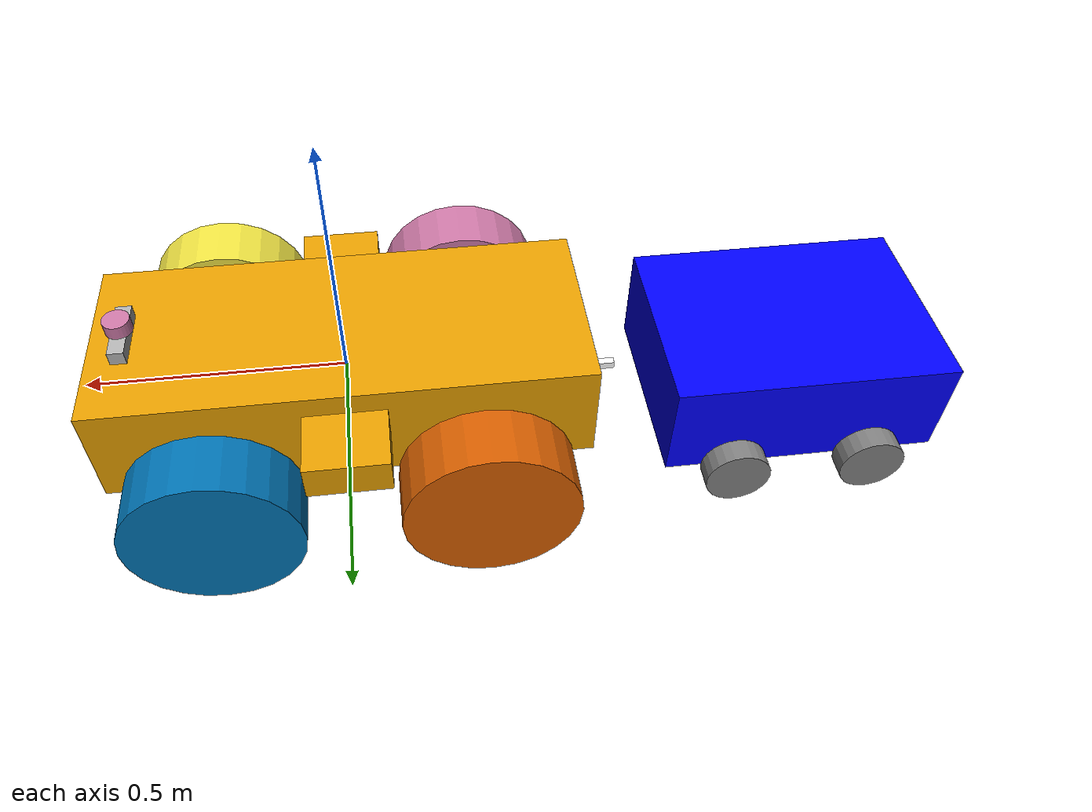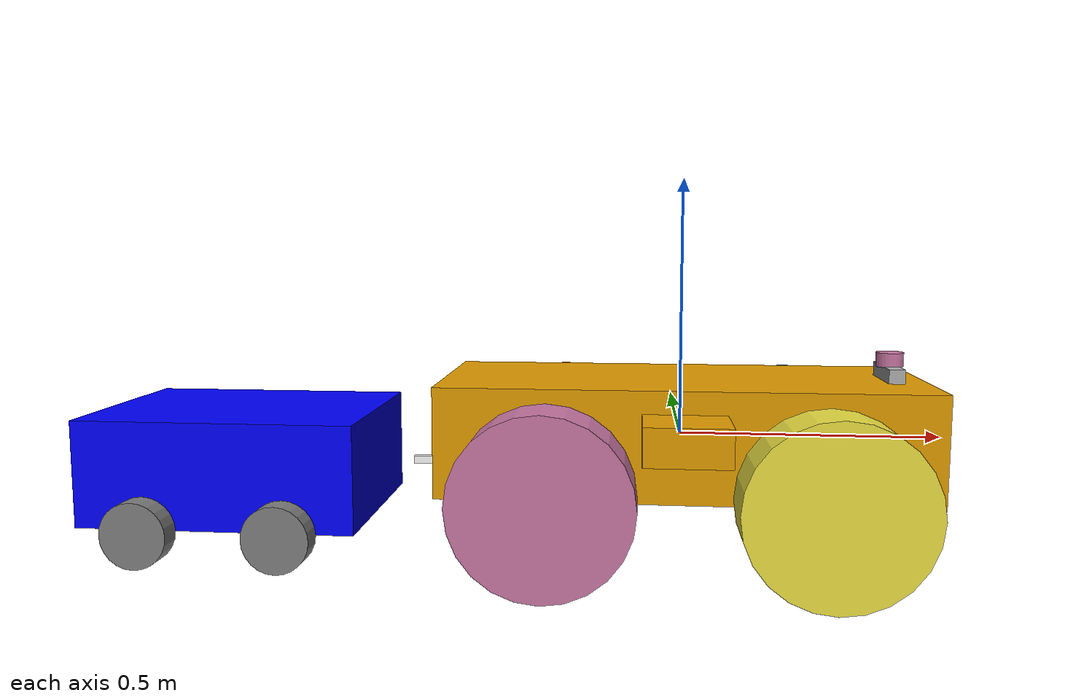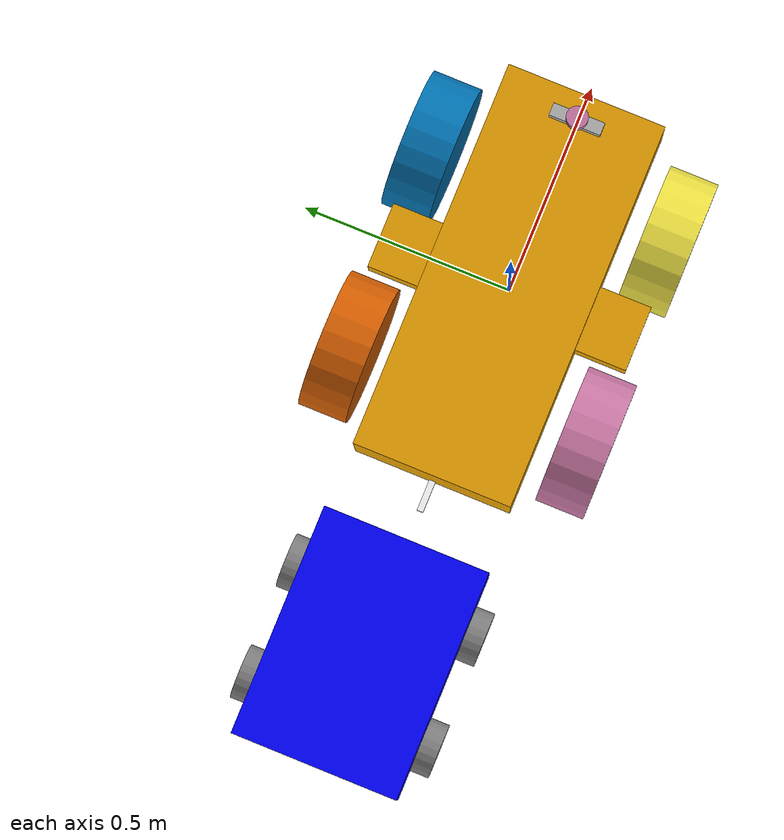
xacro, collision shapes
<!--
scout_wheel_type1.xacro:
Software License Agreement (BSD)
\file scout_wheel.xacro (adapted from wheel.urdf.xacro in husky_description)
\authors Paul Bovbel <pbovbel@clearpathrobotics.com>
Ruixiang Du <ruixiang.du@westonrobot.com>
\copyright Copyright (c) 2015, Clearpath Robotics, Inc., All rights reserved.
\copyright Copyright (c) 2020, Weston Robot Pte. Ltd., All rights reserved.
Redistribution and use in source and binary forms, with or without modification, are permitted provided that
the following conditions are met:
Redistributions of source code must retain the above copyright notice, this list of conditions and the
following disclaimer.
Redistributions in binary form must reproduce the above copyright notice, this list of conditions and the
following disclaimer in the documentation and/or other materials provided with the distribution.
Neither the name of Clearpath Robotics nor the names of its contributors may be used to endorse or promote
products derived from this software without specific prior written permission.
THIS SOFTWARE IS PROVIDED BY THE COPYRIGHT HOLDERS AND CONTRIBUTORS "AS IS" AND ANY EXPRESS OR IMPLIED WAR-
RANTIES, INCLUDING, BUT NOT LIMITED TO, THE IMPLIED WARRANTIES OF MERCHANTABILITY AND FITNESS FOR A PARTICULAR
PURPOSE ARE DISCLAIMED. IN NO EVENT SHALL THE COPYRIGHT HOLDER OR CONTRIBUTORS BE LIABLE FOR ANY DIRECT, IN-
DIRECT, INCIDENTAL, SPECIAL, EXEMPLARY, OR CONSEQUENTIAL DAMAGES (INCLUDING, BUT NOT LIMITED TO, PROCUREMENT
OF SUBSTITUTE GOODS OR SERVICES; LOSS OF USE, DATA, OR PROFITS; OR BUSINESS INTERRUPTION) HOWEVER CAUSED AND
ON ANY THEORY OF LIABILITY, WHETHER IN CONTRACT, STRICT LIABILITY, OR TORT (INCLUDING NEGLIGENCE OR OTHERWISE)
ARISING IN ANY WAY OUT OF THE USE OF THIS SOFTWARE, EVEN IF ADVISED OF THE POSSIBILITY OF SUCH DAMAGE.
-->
<?xml version="1.0"?>

<robot name="scout_v2"
    xmlns:xacro="http://ros.org/wiki/xacro">

    <xacro:arg name="robot_namespace" default="/" />

    <xacro:include filename="$(find scout_description)/urdf/scout_v2/scout_wheel_type1.xacro" />
    <xacro:include filename="$(find scout_description)/urdf/scout_v2/scout_wheel_type2.xacro" />

    <!-- Variables -->
    <xacro:property name="M_PI" value="3.14159"/>

    <!-- Vehicle Geometries -->
    <xacro:property name="base_x_size" value="0.9250000" />
    <xacro:property name="base_y_size" value="0.380000" />
    <xacro:property name="base_z_size" value="0.210000" />

    <xacro:property name="wheelbase" value="0.498" />
    <xacro:property name="track" value="0.58306" />
    <xacro:property name="wheel_vertical_offset" value="-0.0702" />

    <xacro:property name="wheel_length" value="1.1653e-01" />
    <xacro:property name="wheel_radius" value="1.6459e-01" />
    <xacro:property name="wheel_mass" value="0.6"/>

    <xacro:property name="trailer_wheel_length" value="0.045" />
    <xacro:property name="trailer_wheel_radius" value="0.065" />
    <xacro:property name="trailer_wheel_mass" value="0.6"/>

    <xacro:property name="connector_length" value="0.15"/>
    <xacro:property name="connector_width" value="0.015"/>
    <xacro:property name="connector_height" value="0.015"/>

    <xacro:property name="trailer_length" value="0.55"/>
    <xacro:property name="trailer_width" value="0.4"/>
    <xacro:property name="trailer_height" value="${base_z_size}"/>

    <!-- Define inertial property macros  -->
    <xacro:macro name="box_inertia" params="m w h d">
        <inertial>
        <origin xyz="0 0 0" rpy="${pi/2} 0 ${pi/2}"/>
        <mass value="${m}"/>
        <inertia ixx="${(m/12) * (h*h + d*d)}" ixy="0.0" ixz="0.0" iyy="${(m/12) * (w*w + d*d)}" iyz="0.0" izz="${(m/12) * (w*w + h*h)}"/>
        </inertial>
    </xacro:macro>

    <xacro:macro name="cylinder_inertia" params="m r h">
        <inertial>
        <origin xyz="0 0 0" rpy="${pi/2} 0 0" />
        <mass value="${m}"/>
        <inertia ixx="${(m/12) * (3*r*r + h*h)}" ixy = "0" ixz = "0" iyy="${(m/12) * (3*r*r + h*h)}" iyz = "0" izz="${(m/2) * (r*r)}"/>
        </inertial>
    </xacro:macro>

    <xacro:macro name="sphere_inertia" params="m r">
        <inertial>
        <mass value="${m}"/>
        <inertia ixx="${(2/5) * m * (r*r)}" ixy="0.0" ixz="0.0" iyy="${(2/5) * m * (r*r)}" iyz="0.0" izz="${(2/5) * m * (r*r)}"/>
        </inertial>
    </xacro:macro>

    <xacro:macro name="wheel_inertia" params="mass radius">
        <inertial>
        <mass value="${mass}"/>
        <inertia ixx="${(2/5) * mass * (radius * radius)}" ixy="0" ixz="0"
                    iyy="${(2/5) * mass * (radius * radius)}" iyz="0"
                    izz="${(2/5) * mass * (radius * radius)}" />
        </inertial>
    </xacro:macro>

    <!-- Base link -->
    <link name="base_link">
        <visual>
            <origin xyz="0 0 0" rpy="0 0 0" />
            <geometry>
                <mesh filename="file://$(find scout_description)/meshes/scout_v2/base_link.dae" />
            </geometry>
        </visual>
        <collision>
            <origin xyz="0 0 0.008" rpy="0 0 0" />
            <geometry>
                <box size="${base_x_size} ${base_y_size} ${base_z_size}"/>
            </geometry>
        </collision>
        <collision>
            <origin xyz="0 0 ${base_z_size/6}" rpy="0 0 0" />
            <geometry>
                <box size="${base_x_size/6} ${base_y_size*1.65} ${base_z_size/3}"/>
            </geometry>
        </collision>
    </link>

    <link name="base_footprint"/>

    <joint name="base_footprint_joint" type="fixed">
        <origin xyz="0 0 ${wheel_vertical_offset - wheel_radius}" rpy="0 0 0" />
        <parent link="base_link" />
        <child link="base_footprint" />
    </joint>

    <link name="inertial_link">
        <inertial>
            <mass value="40" />
            <origin xyz="0.0 0.0 0.0" />
            <inertia ixx="2.288641" ixy="0" ixz="0" iyy="5.103976" iyz="0" izz="3.431465" />
        </inertial>
    </link>

    <joint name="inertial_joint" type="fixed">
        <origin xyz="0 0 0" rpy="0 0 0" />
        <parent link="base_link" />
        <child link="inertial_link" />
    </joint>

    <!-- Scout wheel macros -->
    <!-- wheel labeled from 0 to 3, conter-clockwise, starting from front right wheel -->
    <!-- motor 1 and 2 (left side) are mechanically installed in a reversed direction -->
    <xacro:scout_wheel_type1 wheel_prefix="front_right">
        <origin xyz="${wheelbase/2} ${-track/2} ${wheel_vertical_offset}" rpy="3.14 0 0" />
    </xacro:scout_wheel_type1>
    <xacro:scout_wheel_type2 wheel_prefix="front_left">
        <origin xyz="${wheelbase/2} ${track/2} ${wheel_vertical_offset}" rpy="3.14 0 0" />
    </xacro:scout_wheel_type2>
    <xacro:scout_wheel_type1 wheel_prefix="rear_left">
        <origin xyz="${-wheelbase/2} ${track/2} ${wheel_vertical_offset}" rpy="3.14 0 0" />
    </xacro:scout_wheel_type1>
    <xacro:scout_wheel_type2 wheel_prefix="rear_right">
        <origin xyz="${-wheelbase/2} ${-track/2} ${wheel_vertical_offset}" rpy="3.14 0 0" />
    </xacro:scout_wheel_type2>

    <!--                TRAILER             -->

    <!-- Trailer wheel macro -->
    <xacro:macro name="trailer_wheel" params="prefix x_reflect y_reflect wheel_offset">
        <link name="${prefix}_link">
        <visual>
            <geometry>
            <cylinder radius="${trailer_wheel_radius}" length="${trailer_wheel_length}"/>
            </geometry>
            <origin xyz="0 0 0" rpy="${pi/2} ${pi/2} 0"/>
            <material name="Gray">
            <color rgba="0.5 0.5 0.5 1.0"/>
            </material>
        </visual>

        <collision>
            <geometry>
            <cylinder radius="${trailer_wheel_radius}" length="${trailer_wheel_length}"/>
            </geometry>
            <origin xyz="0 0 0" rpy="${pi/2} ${pi/2} 0"/>
        </collision>

        <xacro:cylinder_inertia m="${trailer_wheel_mass}" r="${trailer_wheel_radius}" h="${trailer_wheel_length}"/>
        </link>

        <gazebo reference="${prefix}_link">
            <mu1>0.1</mu1>
            <mu2>0.1</mu2>
        </gazebo>

        <joint name="${prefix}_joint" type="continuous">
        <parent link="trailer_link"/>
        <child link="${prefix}_link"/>
        <origin xyz="${(x_reflect * wheel_offset) - (trailer_length/2)} ${y_reflect * (trailer_width / 2 + trailer_wheel_length / 2)} ${-trailer_height / 2}" rpy="0 0 0"/>
        <axis xyz="0 1 0"/>
        </joint>
    </xacro:macro>

    <!-- Trailer Connector Link -->
    <link name="trailer_connector_link">
    <visual>
        <geometry>
        <box size="${connector_width} ${connector_length} ${connector_height}"/>
        </geometry>
        <origin xyz="-${connector_length/2} 0 0" rpy="0 0 ${pi/2}"/>
        <material name="cyan">
        <color rgba="1 1 1 1"/>
        </material>
    </visual>

    <collision>
        <geometry>
        <box size="${connector_width} ${connector_length} ${connector_height}"/>
        </geometry>
        <origin xyz="0 0 0" rpy="0 0 ${pi/2}"/>
    </collision>

    <xacro:box_inertia m="0.1" w="${connector_width}" d="${connector_length}" h="${connector_height}"/>
    </link>

  <!-- Trailer connector revolute joint -->
  <joint name="trailer_connector_joint" type="revolute">
    <parent link="base_link"/>
    <child link="trailer_connector_link"/>
    <origin xyz="${(-base_x_size/2)} 0 -0.065 " rpy="0 0 0"/>
    <axis xyz="0 0 1"/>
    <limit effort="100" velocity="2.0" lower="${-pi/4}" upper="${pi/4}"/>
  </joint>

  <!-- Trailer Link -->
  <link name="trailer_link">
    <visual>
      <geometry>
        <box size="${trailer_length} ${trailer_width} ${trailer_height}"/>
      </geometry>
      <origin xyz="${-(trailer_length/2)} 0 0"/>
      <material name="Blue">
        <color rgba="0 0 1 1"/>
      </material>
    </visual>
    <collision>
      <geometry>
        <box size="${trailer_length} ${trailer_width} ${trailer_height}"/>
      </geometry>
      <origin xyz="${-(trailer_length/2)} 0 0"/>
    </collision>

    <xacro:box_inertia m="5" w="${trailer_width}" d="${trailer_length}" h="${trailer_height}"/>
  </link>

  <!-- Trailer joint -->
  <joint name="trailer_joint" type="fixed">
    <parent link="trailer_connector_link"/>
    <child link="trailer_link"/>
    <origin xyz="${-(connector_length)} 0 0" rpy="0 0 0"/>
    <axis xyz="0 0 1"/>
    <limit effort="100" lower="-3.14159" upper="3.14159" velocity="1"/>
  </joint>

  <!-- Trailer Wheels -->
  <xacro:trailer_wheel prefix="trailer_wheel_lf" x_reflect="1" y_reflect="1" wheel_offset="${trailer_length / 4}"/>
  <xacro:trailer_wheel prefix="trailer_wheel_lr" x_reflect="-1" y_reflect="1" wheel_offset="${trailer_length / 4}"/>
  <xacro:trailer_wheel prefix="trailer_wheel_rf" x_reflect="1" y_reflect="-1" wheel_offset="${trailer_length / 4}"/>
  <xacro:trailer_wheel prefix="trailer_wheel_rr" x_reflect="-1" y_reflect="-1" wheel_offset="${trailer_length / 4}"/>

    <!-- IMU -->

    <link name="imu_link">
        <visual>
        <geometry>
            <box size="0.01 0.01 0.01"/>
        </geometry>
        </visual>

        <collision>
        <geometry>
            <box size="0.01 0.01 0.01"/>
        </geometry>
        </collision>

        <xacro:box_inertia m="0.1" w="0.1" d="0.1" h="0.1"/>
    </link>

    <joint name="imu_joint" type="fixed">
        <parent link="base_link"/>
        <child link="imu_link"/>
        <origin xyz="0.0 0 0.0"/>
    </joint>

    <gazebo reference="imu_link">
        <sensor name="imu_sensor" type="imu">
        <plugin filename="libgazebo_ros_imu_sensor.so" name="imu_plugin">
            <ros>
            <remapping>~/out:=imu</remapping>
            </ros>
            <initial_orientation_as_reference>false</initial_orientation_as_reference>
        </plugin>
        <always_on>true</always_on>
        <update_rate>100</update_rate>
        <visualize>true</visualize>
        <imu>
            <angular_velocity>
            <x>
                <noise type="gaussian">
                <mean>0.0</mean>
                <stddev>2e-4</stddev>
                <bias_mean>0.0000075</bias_mean>
                <bias_stddev>0.0000008</bias_stddev>
                </noise>
            </x>
            <y>
                <noise type="gaussian">
                <mean>0.0</mean>
                <stddev>2e-4</stddev>
                <bias_mean>0.0000075</bias_mean>
                <bias_stddev>0.0000008</bias_stddev>
                </noise>
            </y>
            <z>
                <noise type="gaussian">
                <mean>0.0</mean>
                <stddev>2e-4</stddev>
                <bias_mean>0.0000075</bias_mean>
                <bias_stddev>0.0000008</bias_stddev>
                </noise>
            </z>
            </angular_velocity>
            <linear_acceleration>
            <x>
                <noise type="gaussian">
                <mean>0.0</mean>
                <stddev>1.7e-2</stddev>
                <bias_mean>0.1</bias_mean>
                <bias_stddev>0.001</bias_stddev>
                </noise>
            </x>
            <y>
                <noise type="gaussian">
                <mean>0.0</mean>
                <stddev>1.7e-2</stddev>
                <bias_mean>0.1</bias_mean>
                <bias_stddev>0.001</bias_stddev>
                </noise>
            </y>
            <z>
                <noise type="gaussian">
                <mean>0.0</mean>
                <stddev>1.7e-2</stddev>
                <bias_mean>0.1</bias_mean>
                <bias_stddev>0.001</bias_stddev>
                </noise>
            </z>
            </linear_acceleration>
        </imu>
        </sensor>

    </gazebo>

    <!-- Diff Drive -->

    <gazebo>
        <plugin name='diff_drive' filename='libgazebo_ros_diff_drive.so'>

        <num_wheel_pairs>2</num_wheel_pairs>

        <!--back wheels -->
        <left_joint>front_left_wheel</left_joint>
        <right_joint>front_right_wheel</right_joint>

        <!-- front wheels -->
        <left_joint>rear_left_wheel</left_joint>
        <right_joint>rear_right_wheel</right_joint>

        <!-- kinematics -->
        <wheel_separation>${track}</wheel_separation>
        <wheel_diameter>${wheel_radius*2}</wheel_diameter>
        <wheel_separation>${track}</wheel_separation>
        <wheel_diameter>${wheel_radius*2}</wheel_diameter>

        <!-- limits -->
        <max_wheel_torque>1000</max_wheel_torque>
        <max_wheel_acceleration>1.0</max_wheel_acceleration>
        <updateRate>100</updateRate>

        <covariance_x>0.000100</covariance_x>
        <covariance_y>0.000100</covariance_y>
        <covariance_yaw>0.010000</covariance_yaw>

        <!-- output -->
        <publish_odom>true</publish_odom>
        <publish_odom_tf>false</publish_odom_tf>
        <publish_wheel_tf>true</publish_wheel_tf>

        <odometry_frame>odom</odometry_frame>
        <robot_base_frame>base_link</robot_base_frame>
        </plugin>
    </gazebo>

    <!-- LIDAR -->

    <link name="lidar_link">
        <inertial>
        <origin xyz="0 0 0" rpy="0 0 0"/>
        <mass value="0.125"/>
        <inertia ixx="0.001"  ixy="0"  ixz="0" iyy="0.001" iyz="0" izz="0.001" />
        </inertial>

        <collision>
        <origin xyz="0 0 0" rpy="0 0 0"/>
        <geometry>
            <cylinder radius="0.0254" length="0.0275"/>
        </geometry>
        </collision>

        <visual>
        <origin xyz="0 0 0" rpy="0 0 0"/>
        <geometry>
            <cylinder radius="0.0254" length="0.0275"/>
        </geometry>
        </visual>
    </link>

    <joint name="lidar_joint" type="fixed">
        <parent link="base_link"/>
        <child link="lidar_link"/>
        <origin xyz="0.4 0 ${(base_z_size/2) + 0.02 + 0.0275}" rpy="0 0 0"/>
    </joint>

    <gazebo reference="lidar_link">
        <sensor name="lidar" type="ray">
        <always_on>true</always_on>
        <visualize>false</visualize>
        <update_rate>5</update_rate>
        <ray>
            <scan>
            <horizontal>
                <samples>360</samples>
                <resolution>1.000000</resolution>
                <min_angle>0.000000</min_angle>
                <max_angle>6.280000</max_angle>
            </horizontal>
            </scan>
            <range>
            <min>0.150000</min>
            <max>12</max>
            <resolution>0.015000</resolution>
            </range>
            <noise>
            <type>gaussian</type>
            <mean>0.0</mean>
            <stddev>0.01</stddev>
            </noise>
        </ray>
        <plugin name="scan" filename="libgazebo_ros_ray_sensor.so">
            <ros>
            <remapping>~/out:=scan</remapping>
            </ros>
            <output_type>sensor_msgs/LaserScan</output_type>
            <frame_name>lidar_link</frame_name>
        </plugin>
        </sensor>
    </gazebo>

    <!-- Camera/Deph Sensor -->

    <link name="camera_link">
    <visual>
        <origin xyz="0 0 0" rpy="0 0 0"/>
        <geometry>
        <box size="0.030 0.124 0.030"/>
        </geometry>
    </visual>

    <collision>
        <origin xyz="0 0 0" rpy="0 0 0"/>
        <geometry>
        <box size="0.030 0.124 0.030"/>
        </geometry>
    </collision>

    <inertial>
        <origin xyz="0 0 0" rpy="0 0 0"/>
        <mass value="0.135"/>
        <inertia ixx="${(1/12) * 0.135 * ((0.124  * 0.124)  + (0.030 * 0.030))}" ixy="0.0" ixz="0.0"
                iyy="${(1/12) * 0.135 * ((0.030 * 0.030) + (0.030 * 0.030))}" iyz="0.0"
                izz="${(1/12) * 0.135 * ((0.030 * 0.030) + (0.124  * 0.124))}"/>
    </inertial>
    </link>

    <joint name="camera_joint" type="fixed">
        <parent link="base_link"/>
        <child link="camera_link"/>
        <origin xyz="0.4 0 ${(base_z_size/2) + 0.02}" rpy="0 0 0"/>
    </joint>

    <link name="camera_depth_frame"/>

    <joint name="camera_depth_joint" type="fixed">
        <origin xyz="0 0 0" rpy="${-pi/2} 0 ${-pi/2}"/>
        <parent link="camera_link"/>
        <child link="camera_depth_frame"/>
    </joint>

    <gazebo reference="camera_link">
        <sensor name="depth_camera" type="depth">
        <visualize>true</visualize>
        <update_rate>30.0</update_rate>
        <camera name="camera">
            <horizontal_fov>1.50098</horizontal_fov>
            <image>
            <width>640</width>
            <height>480</height>
            <format>R8G8B8</format>
            </image>
            <clip>
            <near>0.05</near>
            <far>3</far>
            </clip>
        </camera>
        <plugin name="depth_camera_controller" filename="libgazebo_ros_camera.so">
            <baseline>0.2</baseline>
            <alwaysOn>true</alwaysOn>
            <updateRate>0.0</updateRate>
            <frame_name>camera_depth_frame</frame_name>
            <pointCloudCutoff>0.3</pointCloudCutoff>
            <pointCloudCutoffMax>3.0</pointCloudCutoffMax>
            <distortionK1>0</distortionK1>
            <distortionK2>0</distortionK2>
            <distortionK3>0</distortionK3>
            <distortionT1>0</distortionT1>
            <distortionT2>0</distortionT2>
            <CxPrime>0</CxPrime>
            <Cx>0</Cx>
            <Cy>0</Cy>
            <focalLength>0</focalLength>
            <hackBaseline>0</hackBaseline>
        </plugin>
        </sensor>
    </gazebo>

</robot>

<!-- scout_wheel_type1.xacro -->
<robot xmlns:xacro="http://ros.org/wiki/xacro" name="scout_wheel">

    <xacro:macro name="scout_wheel_type1" params="wheel_prefix *joint_pose">
        <link name="${wheel_prefix}_wheel_link">
            <inertial>
                <mass value="3" />
                <origin xyz="0 0 0" />
                <inertia ixx="0.7171" ixy="0" ixz="0" iyy="0.1361" iyz="0" izz="0.7171" />
            </inertial>
            <visual>
                <origin xyz="0 0 0" rpy="0 0 0" />
                <geometry>
                    <mesh filename="file://$(find scout_description)/meshes/scout_v2/wheel_type1.dae" />
                </geometry>
            </visual>
            <collision>
                <origin xyz="0 0 0" rpy="${M_PI/2} 0 0" />
                <geometry>
                    <cylinder length="${wheel_length}" radius="${wheel_radius}" />
                </geometry>
            </collision>
        </link>

        <gazebo reference="${wheel_prefix}_wheel_link">
            <mu1>0.9</mu1>
            <mu2>0.7</mu2>
            <kp>1000000000.0</kp>
            <kd>0.0</kd>
            <minDepth>0.001</minDepth>
            <fdir1>1 0 0</fdir1>
        </gazebo>

        <joint name="${wheel_prefix}_wheel" type="continuous">
            <parent link="base_link"/>
            <child link="${wheel_prefix}_wheel_link"/>
            <xacro:insert_block name="joint_pose"/>
            <axis xyz="0 -1 0" rpy="0 0 0" />
        </joint>
    </xacro:macro>

</robot>

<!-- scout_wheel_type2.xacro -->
<robot xmlns:xacro="http://ros.org/wiki/xacro" name="scout_wheel">

    <xacro:macro name="scout_wheel_type2" params="wheel_prefix *joint_pose">
        <link name="${wheel_prefix}_wheel_link">
            <inertial>
                <mass value="3" />
                <origin xyz="0 0 0" />
                <inertia ixx="0.7171" ixy="0" ixz="0" iyy="0.1361" iyz="0" izz="0.7171" />
            </inertial>
            <visual>
                <origin xyz="0 0 0" rpy="0 0 0" />
                <geometry>
                    <mesh filename="file://$(find scout_description)/meshes/scout_v2/wheel_type2.dae" />

                </geometry>
            </visual>
            <collision>
                <origin xyz="0 0 0" rpy="${M_PI/2} 0 0" />
                <geometry>
                    <cylinder length="${wheel_length}" radius="${wheel_radius}" />
                </geometry>
            </collision>
        </link>

        <gazebo reference="${wheel_prefix}_wheel_link">
            <mu1>0.9</mu1>
            <mu2>0.7</mu2>
            <kp>1000000000.0</kp>
            <kd>0.0</kd>
            <minDepth>0.001</minDepth>
            <fdir1>1 0 0</fdir1>
        </gazebo>

        <joint name="${wheel_prefix}_wheel" type="continuous">
            <parent link="base_link"/>
            <child link="${wheel_prefix}_wheel_link"/>
            <xacro:insert_block name="joint_pose"/>
            <axis xyz="0 -1 0" rpy="0 0 0" />
        </joint>
    </xacro:macro>

</robot>
